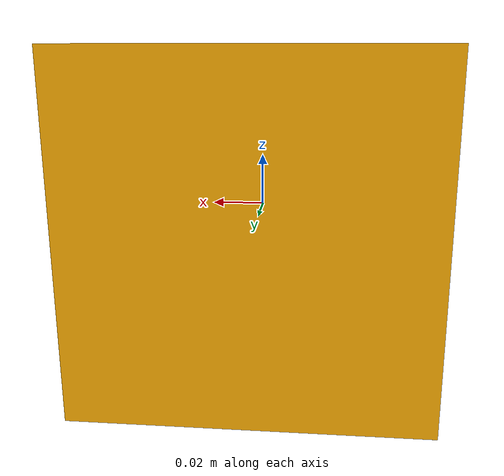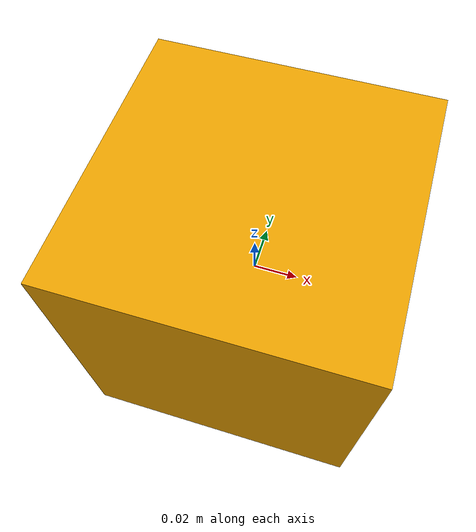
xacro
<?xml version="1.0" ?>

<robot name="simple_cube1" xmlns:xacro="http://ros.org/wiki/xacro">

    <!-- Macro to create a simple cube with an image texture -->
    <xacro:macro name="simple_cube1" >

        <!-- Gazebo Plugins -->
        <xacro:include filename="$(find example_models)/urdf/simple_cube1/simple_cube1.gazebo.xacro"/>

        <!-- Links -->
        <link name="simple_cube1_link">
            <visual>
                <origin xyz="0 0 0" rpy="0 0 0" />
                <geometry>
                    <box size="0.125 0.125 0.125" />
                </geometry>
            </visual>
            <collision>
                <origin xyz="0 0 0" rpy="0 0 0" />
                <geometry>
                    <box size="0.125 0.125 0.125" />
                </geometry>
            </collision>

            <inertial>
                <mass value="0.01" />
                <inertia ixx="${1/12*0.01*(2*0.125**2)}"
                         ixy="0"
                         ixz="0"
                         iyy="${1/12*0.01*(2*0.125**2)}"
                         iyz="0"
                         izz="${1/12*0.01*(2*0.125**2)}" />
            </inertial>
        </link>

    </xacro:macro> <!-- end of the xacro macro -->

    <!-- execute the macro (spawn the cube) -->
    <xacro:simple_cube1 />
</robot>
